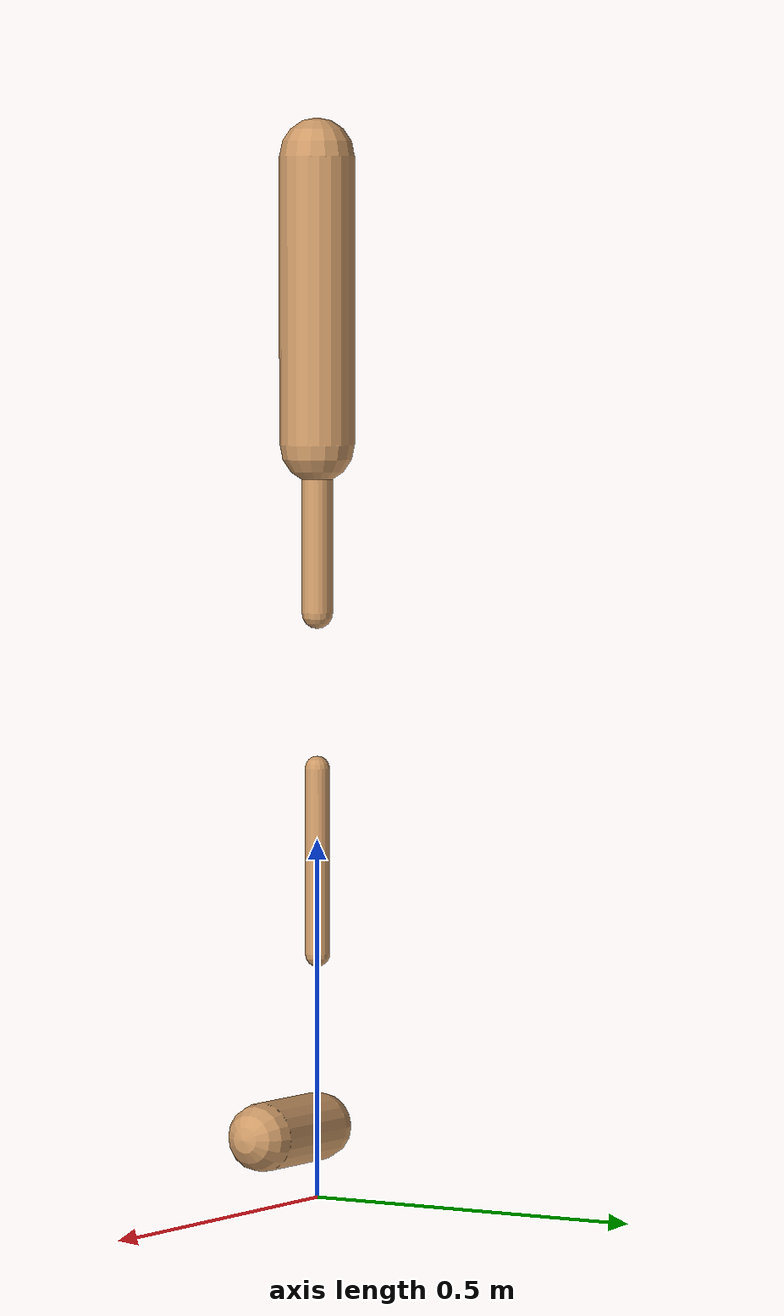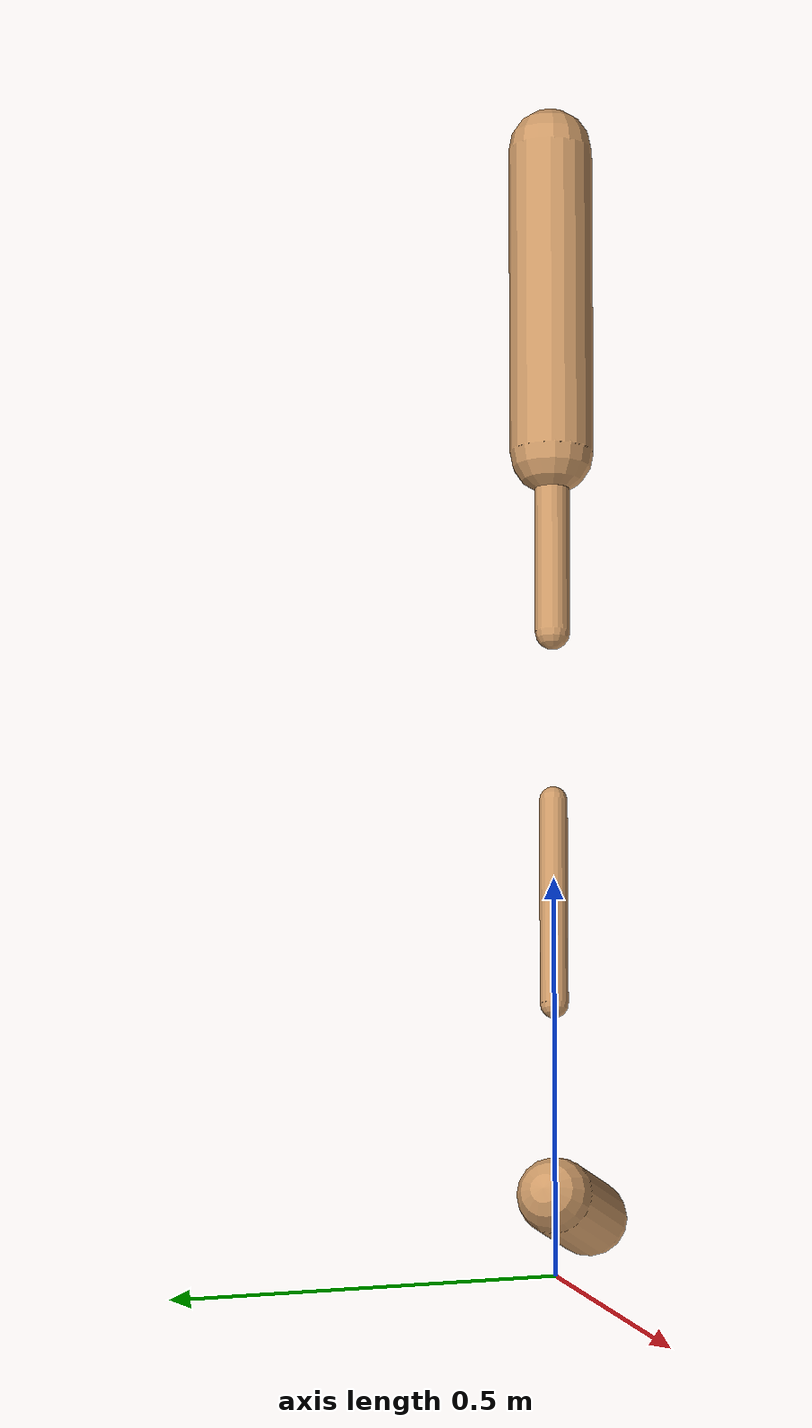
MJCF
<mujoco model="walker2d">
  <compiler angle="degree" coordinate="global" inertiafromgeom="true" />
  <default>
    <joint armature="0.01" damping=".1" limited="true" />
    <geom conaffinity="0" condim="3" contype="1" density="1000" friction="0.8 .1 .1" rgba="0.8 0.6 .4 1" />
  </default>
  <option integrator="RK4" timestep="0.002" />
  <worldbody>

    <body name="torso" pos="0 0 -0.4579510692931727">
      <joint armature="0" axis="1 0 0" damping="0" limited="false" name="ignorex" pos="0 0 0" stiffness="0" type="slide" />
      <joint armature="0" axis="0 0 1" damping="0" limited="false" name="ignorez" pos="0 0 0" ref="1.25" stiffness="0" type="slide" />
      <joint armature="0" axis="0 1 0" damping="0" limited="false" name="ignorey" pos="0 0 0" stiffness="0" type="hinge" />
      <geom fromto="0 0 1.45 0 0 1.05" name="torso_geom" size="0.05250462527487648" type="capsule" />
      <body name="thigh">
        <joint axis="0 -1 0" name="thigh_joint" pos="0 0 1.05" range="-150 0" type="hinge" />
        <geom fromto="0.0 0.0 1.05 0.0 0.0 0.8169241907178186" name="thigh_geom" size="0.021902118194240257" type="capsule" />
        <body name="leg" pos="0.0 0.0 0.21692419071781865">
          <joint axis="0 -1 0" name="leg_joint" pos="0 0 0.6" range="-150 0" type="hinge" />
          <geom fromto="0.0 0.0 0.6 0.0 0.0 0.3410268785753541" name="leg_geom" size="0.017521694555392205" type="capsule" />
          <body name="foot" pos="0.0 0.0 0.24102687857535407">
            <joint axis="0 -1 0" name="foot_joint" pos="0 0 0.1" range="-45 45" type="hinge" />
            <geom fromto="0.0 0.0 0.1 0.14262432018236604 0.0 0.1" name="foot_geom" size="0.04745472433883408" type="capsule" />
          </body>
        </body>
      </body>

      <body name="thigh_left">
        <joint axis="0 -1 0" name="thigh_left_joint" pos="0 0 1.05" range="-150 0" type="hinge" />
        <geom fromto="0.0 0.0 1.05 0.0 0.0 0.8169241907178186" name="thigh_left_geom" rgba=".7 .3 .6 1" size="0.021902118194240257" type="capsule" />
        <body name="leg_left" pos="0.0 0.0 0.21692419071781865">
          <joint axis="0 -1 0" name="leg_left_joint" pos="0 0 0.6" range="-150 0" type="hinge" />
          <geom fromto="0.0 0.0 0.6 0.0 0.0 0.3410268785753541" name="leg_left_geom" rgba=".7 .3 .6 1" size="0.017521694555392205" type="capsule" />
          <body name="foot_left" pos="0.0 0.0 0.24102687857535407">
            <joint axis="0 -1 0" name="foot_left_joint" pos="0 0 0.1" range="-45 45" type="hinge" />
            <geom fromto="0.0 0.0 0.1 0.14262432018236604 0.0 0.1" name="foot_left_geom" rgba=".7 .3 .6 1" size="0.04745472433883408" type="capsule" />
          </body>
        </body>
      </body>
    </body>
  </worldbody>
  <actuator>

    <motor ctrllimited="true" ctrlrange="-1.0 1.0" gear="100" joint="thigh_joint" />
    <motor ctrllimited="true" ctrlrange="-1.0 1.0" gear="100" joint="leg_joint" />
    <motor ctrllimited="true" ctrlrange="-1.0 1.0" gear="100" joint="foot_joint" />
    <motor ctrllimited="true" ctrlrange="-1.0 1.0" gear="100" joint="thigh_left_joint" />
    <motor ctrllimited="true" ctrlrange="-1.0 1.0" gear="100" joint="leg_left_joint" />
    <motor ctrllimited="true" ctrlrange="-1.0 1.0" gear="100" joint="foot_left_joint" />

  </actuator>
</mujoco>
